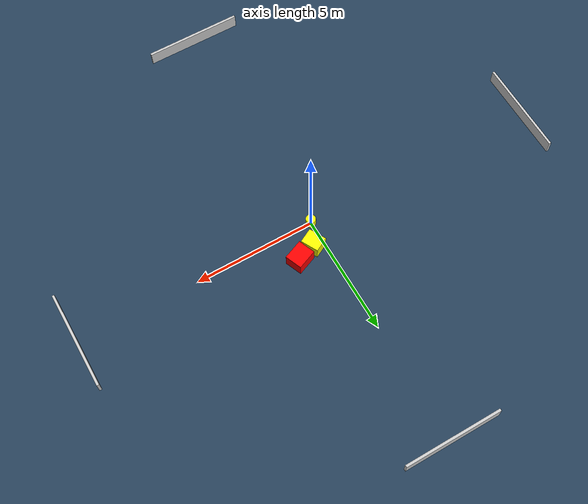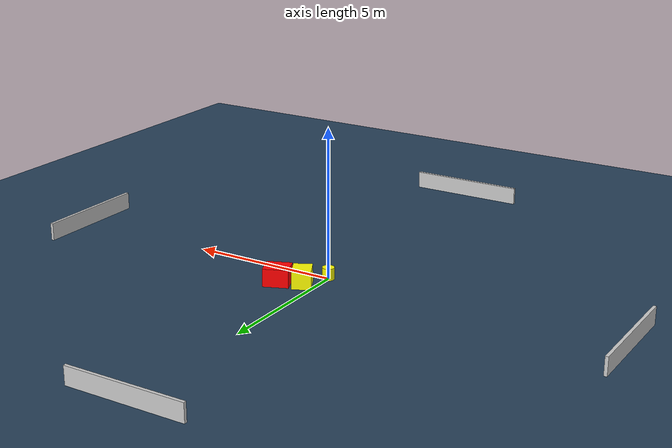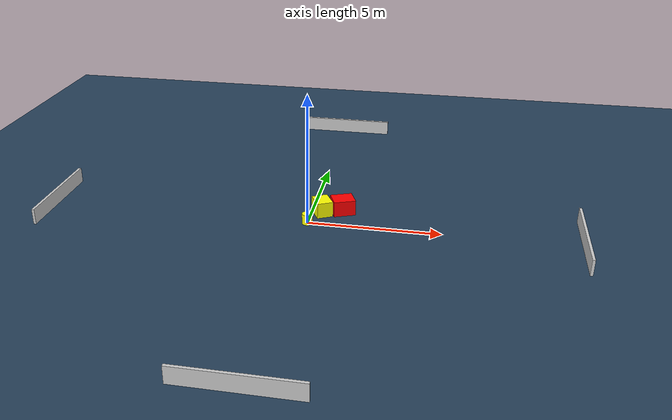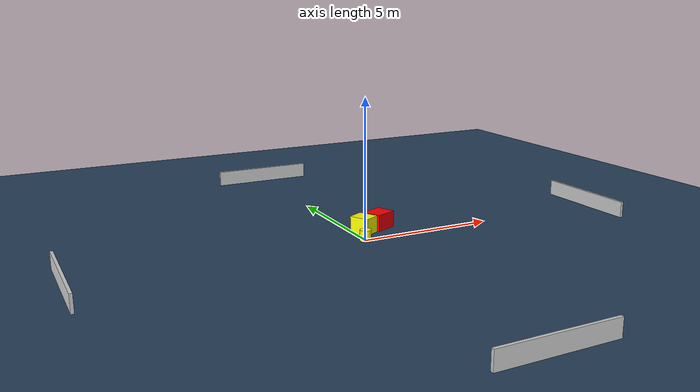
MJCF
<?xml version="1.0" ?>
<mujoco model="generated_environment">
  <option timestep="0.01" integrator="RK4" cone="elliptic"/>
  <default>
    <geom density="1"/>
  </default>
  <asset>
    <texture builtin="gradient" height="3072" name="skybox" rgb1="0.3 0.5 0.7" rgb2="0 0 0" type="skybox" width="512"/>
    <texture builtin="checker" height="300" name="groundplane" rgb1="0.2 0.3 0.4" rgb2="0.1 0.2 0.3" type="2d" width="300"/>
    <material name="groundplane" reflectance="0.2" texrepeat="5 5" texture="groundplane"/>
  </asset>
  <worldbody>
    <light dir="0 0 -1" directional="true" pos="0 0 1.5"/>
    <geom condim="3" friction="0.5 0.005 0.001" material="groundplane" name="floor" pos="0 0 0" size="0 0 0.05" type="plane"/>
    <body name="walls">
      <geom name="wall_1" condim="4" pos="-10.0 0.0 0.3" rgba="0.800000011920929 0.800000011920929 0.800000011920929 1.0" size="0.05 2.0 0.3" type="box"/>
      <geom name="wall_2" condim="4" pos="10.0 0.0 0.3" rgba="0.800000011920929 0.800000011920929 0.800000011920929 1.0" size="0.05 2.0 0.3" type="box"/>
      <geom name="wall_3" condim="4" pos="0.0 -10.0 0.3" rgba="0.800000011920929 0.800000011920929 0.800000011920929 1.0" size="2.0 0.05 0.3" type="box"/>
      <geom name="wall_4" condim="4" pos="0.0 10.0 0.3" rgba="0.800000011920929 0.800000011920929 0.800000011920929 1.0" size="2.0 0.05 0.3" type="box"/>
    </body>
    <body name="robot">
      <joint name="joint_x" type="slide" pos="0 0 0" axis="1 0 0"/>
      <joint name="joint_y" type="slide" pos="0 0 0" axis="0 1 0"/>
      <geom name="robot" type="cylinder" pos="0.0 0.0 0.2" size="0.2 0.2 0.0" mass="5.0" friction="1.0 0.005 0.0001" condim="4" rgba="1.0 1.0 0.0 1.0"/>
    </body>
    <body name="obstacle_1_movable">
      <geom name="obstacle_1_movable" condim="4" pos="0.41005097448075806 0.9122095247120958 0.3" euler="0 0 207.635877360408" friction="0.0 0.005 0.001" rgba="1.0 1.0 0.0 1.0" size="0.3096276797365383 0.3700176618205689 0.3" type="box" mass="0.1"/>
      <joint type="free"/>
    </body>
    <body name="obstacle_2_static">
      <geom name="obstacle_2_static" condim="4" pos="1.164772896854439 1.1809869752775246 0.3" euler="0 0 22.042614654763643" friction="0.0 0.005 0.001" rgba="1.0 0.0 0.0 1.0" size="0.41973259793785966 0.3570900855008356 0.3" type="box"/>
    </body>
  </worldbody>
  <actuator>
    <motor name="actuator_x" joint="joint_x" gear="1" ctrlrange="-1 1"/>
    <motor name="actuator_y" joint="joint_y" gear="1" ctrlrange="-1 1"/>
  </actuator>
</mujoco>
